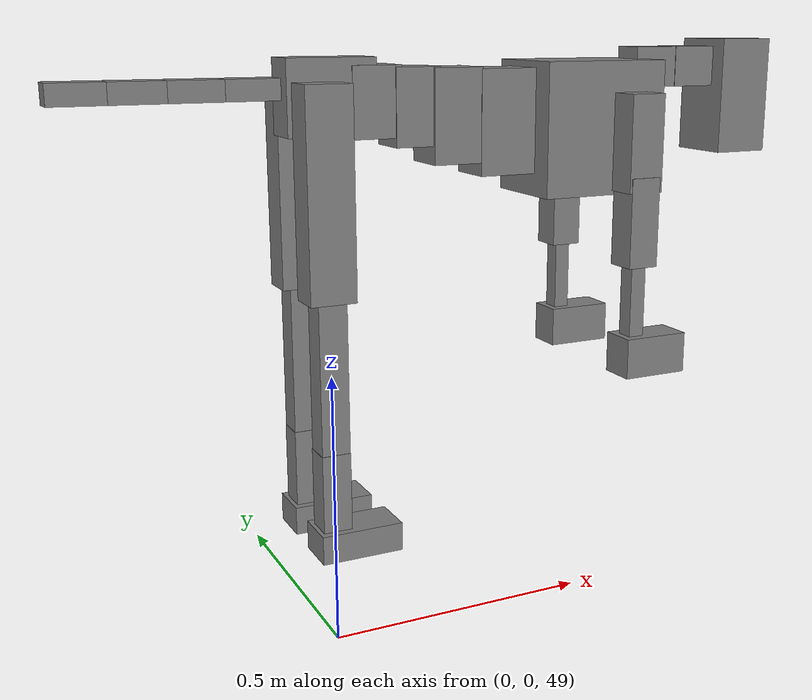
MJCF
<mujoco model="dog">

    <default>
        <joint armature="0.02" stiffness="1" damping="0.2" limited="true"/>
        <geom condim="3" friction="1 0.05 0.05" margin="0.01"/>
        <motor ctrllimited="true" ctrlrange="-1.0 1.0" forcelimited="true" gear="50"/>
    </default>

    <compiler inertiafromgeom="true" angle="radian"/>

    <option timestep="0.016" iterations="50" tolerance="1e-10" solver="Newton" jacobian="dense" cone="pyramidal"/>

    <size nconmax="20000" njmax="60000" nstack="5000000"/>
    <visual>
        <map force="0.1" zfar="30"/>
        <rgba haze="0.15 0.25 0.35 1"/>
        <quality shadowsize="2048"/>
        <global offwidth="800" offheight="800"/>
    </visual>

    <asset>
        <texture type="skybox" builtin="gradient" rgb1="0.3 0.5 0.7" rgb2="0 0 0" width="512" height="512"/>
        <texture name="texplane" type="2d" builtin="checker" rgb1=".2 .3 .4" rgb2=".1 0.15 0.2" width="512" height="512"
                 mark="cross" markrgb=".8 .8 .8"/>
        <texture name="texgeom" type="cube" builtin="flat" mark="cross" width="127" height="1278" rgb1="0.8 0.6 0.4"
                 rgb2="0.8 0.6 0.4" markrgb="1 1 1" random="0.01"/>

        <material name="matplane" reflectance="0.3" texture="texplane" texrepeat="1 1" texuniform="true"/>
        <material name="matgeom" texture="texgeom" texuniform="true" rgba="0.8 0.6 .4 1"/>
    </asset>

    <worldbody>
        <geom name="floor" pos="0 0 0" size="0 0 .25" type="plane" material="matplane" condim="3"/>

        <light directional="false" diffuse=".2 .2 .2" specular="0 0 0" pos="0 0 5" dir="0 0 -1" castshadow="false"/>
        <light mode="targetbodycom" target="torso" directional="false" diffuse=".8 .8 .8" specular="0.3 0.3 0.3"
               pos="0 0 4.0" dir="0 0 -1"/>

        <body name="root" pos="0 0 50">
            <freejoint name="root_1"/>
            <geom type="box" pos="0 0 -0.02" size="0.0774  0.0358  0.063" density="2030"/>

            <body name="spine1" pos="0.054 0 0">
                <joint name="spine1_y" axis="0 1 0" range="0 0.7" limited="true"/>
                <geom type="box" pos="0.02375 0 -0.03" size="0.04375  0.0375  0.05985" density="2030"/>

                <body name="spine2" pos="0.0612 0 0">
                    <joint name="spine2_y" axis="0 1 0" range="-0.15 0.15" limited="true"/>
                    <geom type="box" pos="0.03555  0  -0.04" size="0.04055  0.039  0.06615" density="2030"/>

                    <body name="spine3" pos="0.0730 0 0">
                        <joint name="spine3_y" axis="0 1 0" range="-0.15 0.15" limited="true"/>
                        <geom type="box" pos="0.03555  0  -0.057" size="0.04555  0.0445  0.081" density="2030"/>

                        <body name="spine4" pos="0.0780 0 0">
                            <joint name="spine4_y" axis="0 1 0" range="-0.15 0.15" limited="true"/>
                            <geom type="box" pos="0.05265  0  -0.07" size="0.05265  0.045  0.09135" density="2030"/>

                            <body name="torso" pos="0.1082 0 0">
                                <joint name="torso_y" axis="0 1 0" range="-0.15 0.15" limited="true"/>
                                <geom type="box" pos="0.11925  0  -0.085" size="0.11925  0.085  0.11745"
                                      density="2030"/>

                                <body name="neck1" pos="0.2160  0   0.0180">
                                    <joint name="neck1_y" axis="0 1 0" range="-1.2  -1" limited="true"/>
                                    <geom type="box" pos="0.0423  0  0" size="0.0423  0.03  0.036" density="2325"/>

                                    <body name="neck2" pos="0.0853  0  0">
                                        <joint name="neck2_y" axis="0 1 0" range="0.1  0" limited="true"/>
                                        <geom type="box" pos="0.0423  0  0" size="0.0423  0.03  0.036" density="2325"/>

                                        <body name="head" pos="0.0853  0  0">
                                            <joint name="head_y" axis="0 1 0" range="-0.3  -0.2" limited="true"/>
                                            <geom type="box" pos="0.0531  0  -0.055" size="0.0531  0.06  0.1044"
                                                  density="4030"/>

                                        </body>
                                    </body>
                                </body>

                                <body name="front_shoulder" pos="0.156  0   -0.0480">
                                    <joint name="front_shoulder_y" axis="0 1 0" range="-1 1.5" limited="true"/>
                                    <geom type="box" pos="0 0.13 -0.0587" size="0.0328  0.0280  0.0854" density="1158"/>
                                    <geom type="box" pos="0 -0.13 -0.0587" size="0.0328  0.0280  0.0854"
                                          density="1158"/>

                                    <body name="front_elbow" pos="0  0  -0.1175">
                                        <joint name="front_elbow_y" axis="0 1 0" range="-2 0" limited="true"/>
                                        <geom type="box" pos="0 0.13 -0.0796" size="0.0285  0.0291  0.0796"
                                              density="1081"/>
                                        <geom type="box" pos="0 -0.13 -0.0796" size="0.0285  0.0291  0.0796"
                                              density="1081"/>

                                        <body name="front_wrist" pos="0  0  -0.1591">
                                            <joint name="front_wrist_y" axis="0 1 0" range="-0.2 0" limited="true"/>
                                            <geom type="box" pos="0 0.13 -0.0714" size="0.0145  0.0161  0.0846"
                                                  density="1664"/>
                                            <geom type="box" pos="0 -0.13 -0.0714" size="0.0145  0.0161  0.0846"
                                                  density="1664"/>

                                            <body name="front_finger_end" pos="0  0  -0.1429">
                                                <joint name="front_finger_y" axis="0 1 0" range="-0.4 1"
                                                       limited="true"/>
                                                <geom type="box" pos="0.0334  0.13  -0.0215"
                                                      size="0.0613  0.0334  0.0365" density="1515"/>
                                                <geom type="box" pos="0.0334  -0.13  -0.0215"
                                                      size="0.0613  0.0334  0.0365" density="1515"/>

                                            </body>

                                        </body>
                                    </body>
                                </body>

                            </body>
                        </body>
                    </body>
                </body>
            </body>

            <body name="back_hip" pos="-0.03 0 -0.018">
                <joint name="back_hip_y" axis="0 1 0" range="-1.5 0.3" limited="true"/>
                <geom type="box" pos="0 0.07 -0.1532" size="0.0402  0.0316  0.1760" density="1154"/>
                <geom type="box" pos="0 -0.07 -0.1532" size="0.0402  0.0316  0.1760" density="1154"/>

                <body name="back_knee" pos="0  0  -0.3064">
                    <joint name="back_knee_y" axis="0 1 0" range="0 2.8" limited="true"/>
                    <geom type="box" pos="0 0.07 -0.1469" size="0.0249  0.0246  0.1624" density="1227"/>
                    <geom type="box" pos="0 -0.07 -0.1469" size="0.0249  0.0246  0.1624" density="1227"/>

                    <body name="back_ankle" pos="0  0  -0.2938">
                        <joint name="back_ankle_y" axis="0 1 0" range="-2.2 0" limited="true"/>
                        <geom type="box" pos="0 0.07 -0.0704" size="0.0254  0.0254  0.0817" density="1284"/>
                        <geom type="box" pos="0 -0.07 -0.0704" size="0.0254  0.0254  0.0817" density="1284"/>

                        <body name="back_toe_end" pos="0  0  -0.1409">
                            <joint name="back_toe_y" axis="0 1 0" range="-0.4 1" limited="true"/>
                            <geom type="box" pos="0.0396  0.07  -0.0102" size="0.0726  0.0396  0.0252" density="1515"/>
                            <geom type="box" pos="0.0396  -0.07  -0.0102" size="0.0726  0.0396  0.0252" density="1515"/>

                        </body>
                    </body>
                </body>
            </body>

            <body name="tail1" pos="-0.074 0 -0.006">
                <joint name="tail1_y" axis="0 1 0" range="-0.2 0.2" limited="true"/>
                <geom type="box" pos="-0.0536  0  0" size="0.045  0.025  0.0175" density="1587"/>

                <body name="tail2" pos="-0.09 0 0">
                    <joint name="tail2_y" axis="0 1 0" range="-0.2 0.2" limited="true"/>
                    <geom type="box" pos="-0.0536  0  0" size="0.045  0.025  0.0175" density="1587"/>

                    <body name="tail3" pos="-0.09 0 0">
                        <joint name="tail3_y" axis="0 1 0" range="-0.2 0.2" limited="true"/>
                        <geom type="box" pos="-0.0536  0  0" size="0.045  0.025  0.0175" density="1587"/>

                        <body name="tail4" pos="-0.09 0 0">
                            <joint name="tail4_y" axis="0 1 0" range="-0.2 0.2" limited="true"/>
                            <geom type="box" pos="-0.0536  0  0" size="0.045  0.025  0.0175" density="1587"/>

                        </body>
                    </body>
                </body>
            </body>
        </body>
    </worldbody>

    <actuator>
        <motor joint="spine1_y" forcerange="-150 150     "/>
        <motor joint="spine2_y" forcerange="-150 150     "/>
        <motor joint="spine3_y" forcerange="-150 150     "/>
        <motor joint="spine4_y" forcerange="-150 150     "/>
        <motor joint="torso_y" forcerange="-150 150     "/>
        <motor joint="neck1_y" forcerange="-100 100       "/>
        <motor joint="neck2_y" forcerange="-100 100       "/>
        <motor joint="head_y" forcerange="-150 150       "/>
        <motor joint="front_shoulder_y" forcerange="-155.94 131.02"/>
        <motor joint="front_elbow_y" forcerange="-169.24 142.62"/>
        <motor joint="front_wrist_y" forcerange="-52.69 75.78"/>
        <motor joint="front_finger_y" forcerange="-78.28 59.98"/>
        <motor joint="back_hip_y" forcerange="-328.05 292.75"/>
        <motor joint="back_knee_y" forcerange="-230.96 326.41"/>
        <motor joint="back_angle_y" forcerange="-169.92 135.77"/>
        <motor joint="back_toe_y" forcerange="-114.24 122.62"/>
        <motor joint="tail1_y" forcerange="-50 50     "/>
        <motor joint="tail2_y" forcerange="-50 50     "/>
        <motor joint="tail3_y" forcerange="-50 50     "/>
        <motor joint="tail4_y" forcerange="-50 50     "/>
    </actuator>
</mujoco>
